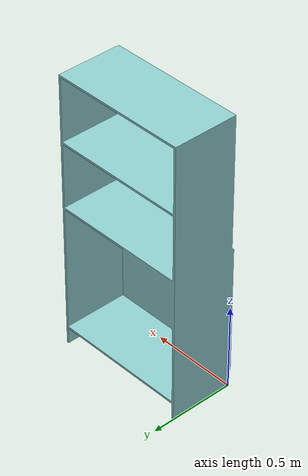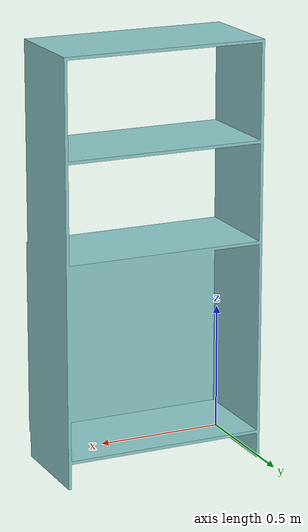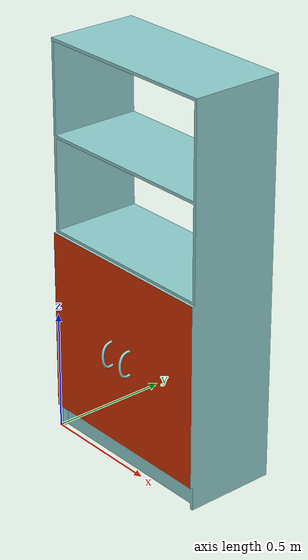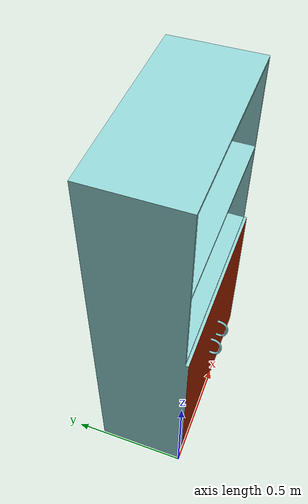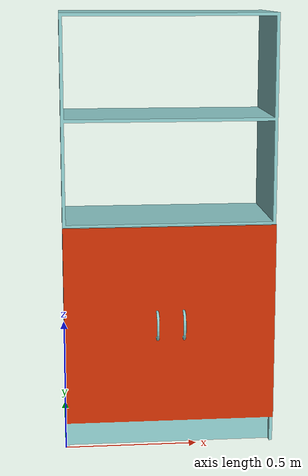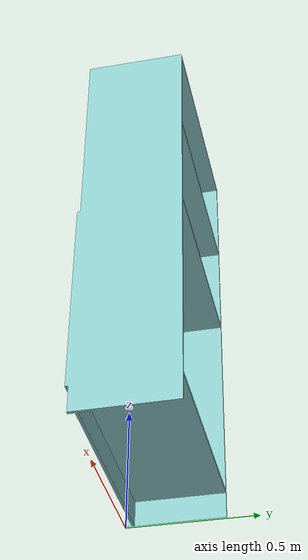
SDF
<?xml version="1.0" ?>
<sdf version='1.6'>
  <model name='Shelf_2_FL'>
    <link name='Shelf_2_FL'>
      <pose frame=''>0 0 0 0 -0 0</pose>
      <inertial>
        <pose frame=''>0.399 0.14621 0.79058 0 -0 0</pose>
        <mass>36.829</mass>
        <inertia>
          <ixx>10.258</ixx>
          <ixy>4.9197e-06</ixy>
          <ixz>7.9701e-06</ixz>
          <iyy>13.096</iyy>
          <iyz>0.53149</iyz>
          <izz>3.9755</izz>
        </inertia>
      </inertial>
      <collision name='Shelf_2_FL_collision'>
        <pose frame=''>0 0 0 1.5708 -0 0</pose>
        <geometry>
          <mesh>
            <scale>1 1 1</scale>
            <uri>model://Shelf_2_FL/meshes/Shelf_2_FL.dae</uri>
          </mesh>
        </geometry>
      </collision>
      <visual name='Shelf_2_FL_visual'>
        <pose frame=''>0 0 0 1.5708 -0 0</pose>
        <geometry>
          <mesh>
            <scale>1 1 1</scale>
            <uri>model://Shelf_2_FL/meshes/Shelf_2_FL.dae</uri>
          </mesh>
        </geometry>
      </visual>
    </link>
  </model>
</sdf>
